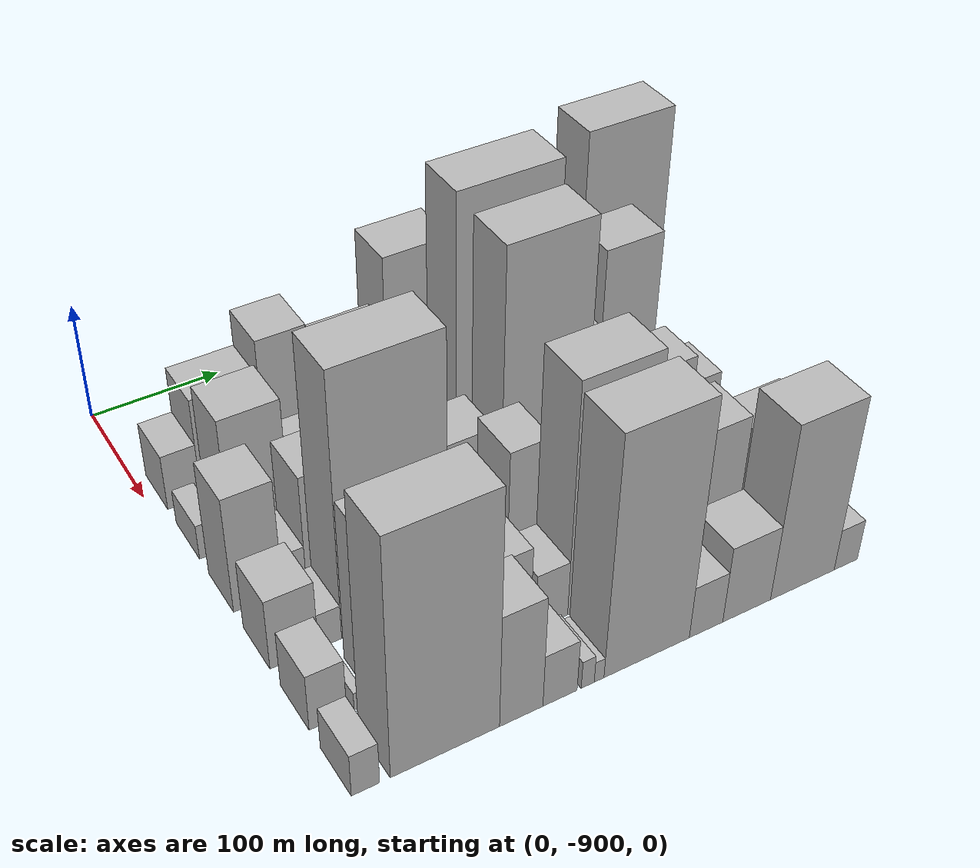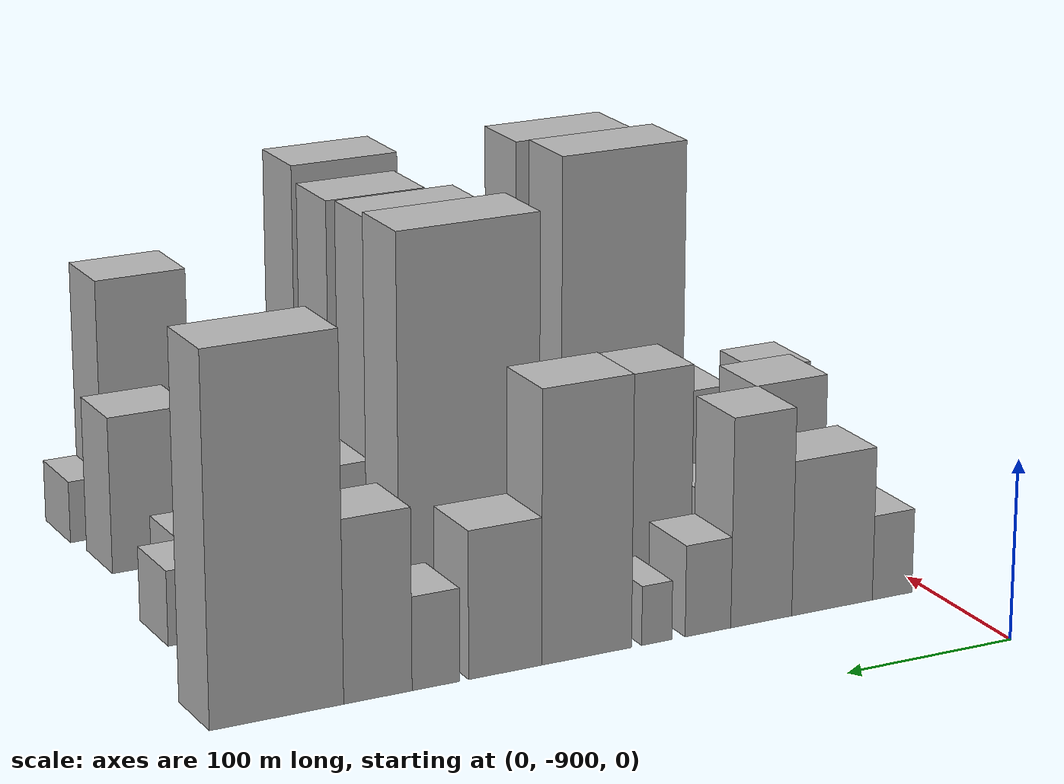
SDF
<sdf version="1.6">
 <world name="default">
  <model name="building_1">
   <static>1</static>
   <pose>100.0000 -877.4478 0 0.000000 0.000000 0.000000</pose>
   <link name="link">
    <pose>0 0 24.00 0 0 0</pose>
    <collision name="collision"><geometry><box><size>40.0000 25.1045 48.0000</size></box></geometry></collision>
    <visual name="visual">
     <cast_shadows>0</cast_shadows>
     <geometry><box><size>40.0000 25.1045 48.0000</size></box></geometry>
     <material>
      <script>
       <uri>model://HANNAS_wall/materials/scripts</uri>
       <uri>model://HANNAS_wall/materials/textures</uri>
       <name>vrc/HANNAS_wall</name>
      </script>
     </material>
    </visual>
   </link>
  </model>
  <model name="building_2">
   <static>1</static>
   <pose>100.0000 -839.7803 0 0.000000 0.000000 0.000000</pose>
   <link name="link">
    <pose>0 0 43.50 0 0 0</pose>
    <collision name="collision"><geometry><box><size>40.0000 50.2305 87.0000</size></box></geometry></collision>
    <visual name="visual">
     <cast_shadows>0</cast_shadows>
     <geometry><box><size>40.0000 50.2305 87.0000</size></box></geometry>
     <material>
      <script>
       <uri>model://HANNAS_wall/materials/scripts</uri>
       <uri>model://HANNAS_wall/materials/textures</uri>
       <name>vrc/HANNAS_wall</name>
      </script>
     </material>
    </visual>
   </link>
  </model>
  <model name="building_3">
   <static>1</static>
   <pose>100.0000 -796.0003 0 0.000000 0.000000 0.000000</pose>
   <link name="link">
    <pose>0 0 58.50 0 0 0</pose>
    <collision name="collision"><geometry><box><size>40.0000 37.3295 117.0000</size></box></geometry></collision>
    <visual name="visual">
     <cast_shadows>0</cast_shadows>
     <geometry><box><size>40.0000 37.3295 117.0000</size></box></geometry>
     <material>
      <script>
       <uri>model://HANNAS_wall/materials/scripts</uri>
       <uri>model://HANNAS_wall/materials/textures</uri>
       <name>vrc/HANNAS_wall</name>
      </script>
     </material>
    </visual>
   </link>
  </model>
  <model name="building_4">
   <static>1</static>
   <pose>100.0000 -763.5788 0 0.000000 0.000000 0.000000</pose>
   <link name="link">
    <pose>0 0 25.50 0 0 0</pose>
    <collision name="collision"><geometry><box><size>40.0000 27.5136 51.0000</size></box></geometry></collision>
    <visual name="visual">
     <cast_shadows>0</cast_shadows>
     <geometry><box><size>40.0000 27.5136 51.0000</size></box></geometry>
     <material>
      <script>
       <uri>model://HANNAS_wall/materials/scripts</uri>
       <uri>model://HANNAS_wall/materials/textures</uri>
       <name>vrc/HANNAS_wall</name>
      </script>
     </material>
    </visual>
   </link>
  </model>
  <model name="building_5">
   <static>1</static>
   <pose>100.0000 -732.8521 0 0.000000 0.000000 0.000000</pose>
   <link name="link">
    <pose>0 0 16.50 0 0 0</pose>
    <collision name="collision"><geometry><box><size>40.0000 17.9398 33.0000</size></box></geometry></collision>
    <visual name="visual">
     <cast_shadows>0</cast_shadows>
     <geometry><box><size>40.0000 17.9398 33.0000</size></box></geometry>
     <material>
      <script>
       <uri>model://HANNAS_wall/materials/scripts</uri>
       <uri>model://HANNAS_wall/materials/textures</uri>
       <name>vrc/HANNAS_wall</name>
      </script>
     </material>
    </visual>
   </link>
  </model>
  <model name="building_6">
   <static>1</static>
   <pose>100.0000 -691.6194 0 0.000000 0.000000 0.000000</pose>
   <link name="link">
    <pose>0 0 75.00 0 0 0</pose>
    <collision name="collision"><geometry><box><size>40.0000 52.5255 150.0000</size></box></geometry></collision>
    <visual name="visual">
     <cast_shadows>0</cast_shadows>
     <geometry><box><size>40.0000 52.5255 150.0000</size></box></geometry>
     <material>
      <script>
       <uri>model://HANNAS_wall/materials/scripts</uri>
       <uri>model://HANNAS_wall/materials/textures</uri>
       <name>vrc/HANNAS_wall</name>
      </script>
     </material>
    </visual>
   </link>
  </model>
  <model name="building_7">
   <static>1</static>
   <pose>100.0000 -644.4254 0 0.000000 0.000000 0.000000</pose>
   <link name="link">
    <pose>0 0 40.50 0 0 0</pose>
    <collision name="collision"><geometry><box><size>40.0000 41.8624 81.0000</size></box></geometry></collision>
    <visual name="visual">
     <cast_shadows>0</cast_shadows>
     <geometry><box><size>40.0000 41.8624 81.0000</size></box></geometry>
     <material>
      <script>
       <uri>model://HANNAS_wall/materials/scripts</uri>
       <uri>model://HANNAS_wall/materials/textures</uri>
       <name>vrc/HANNAS_wall</name>
      </script>
     </material>
    </visual>
   </link>
  </model>
  <model name="building_8">
   <static>1</static>
   <pose>100.0000 -605.0732 0 0.000000 0.000000 0.000000</pose>
   <link name="link">
    <pose>0 0 25.50 0 0 0</pose>
    <collision name="collision"><geometry><box><size>40.0000 26.8420 51.0000</size></box></geometry></collision>
    <visual name="visual">
     <cast_shadows>0</cast_shadows>
     <geometry><box><size>40.0000 26.8420 51.0000</size></box></geometry>
     <material>
      <script>
       <uri>model://HANNAS_wall/materials/scripts</uri>
       <uri>model://HANNAS_wall/materials/textures</uri>
       <name>vrc/HANNAS_wall</name>
      </script>
     </material>
    </visual>
   </link>
  </model>
  <model name="building_9">
   <static>1</static>
   <pose>100.0000 -572.6820 0 0.000000 0.000000 0.000000</pose>
   <link name="link">
    <pose>0 0 49.50 0 0 0</pose>
    <collision name="collision"><geometry><box><size>40.0000 37.9405 99.0000</size></box></geometry></collision>
    <visual name="visual">
     <cast_shadows>0</cast_shadows>
     <geometry><box><size>40.0000 37.9405 99.0000</size></box></geometry>
     <material>
      <script>
       <uri>model://HANNAS_wall/materials/scripts</uri>
       <uri>model://HANNAS_wall/materials/textures</uri>
       <name>vrc/HANNAS_wall</name>
      </script>
     </material>
    </visual>
   </link>
  </model>
  <model name="building_10">
   <static>1</static>
   <pose>100.0000 -517.3630 0 0.000000 0.000000 0.000000</pose>
   <link name="link">
    <pose>0 0 99.00 0 0 0</pose>
    <collision name="collision"><geometry><box><size>40.0000 72.6974 198.0000</size></box></geometry></collision>
    <visual name="visual">
     <cast_shadows>0</cast_shadows>
     <geometry><box><size>40.0000 72.6974 198.0000</size></box></geometry>
     <material>
      <script>
       <uri>model://HANNAS_wall/materials/scripts</uri>
       <uri>model://HANNAS_wall/materials/textures</uri>
       <name>vrc/HANNAS_wall</name>
      </script>
     </material>
    </visual>
   </link>
  </model>
  <model name="building_46">
   <static>1</static>
   <pose>155.0000 -882.0637 0 0.000000 0.000000 0.000000</pose>
   <link name="link">
    <pose>0 0 15.00 0 0 0</pose>
    <collision name="collision"><geometry><box><size>40.0000 15.8725 30.0000</size></box></geometry></collision>
    <visual name="visual">
     <cast_shadows>0</cast_shadows>
     <geometry><box><size>40.0000 15.8725 30.0000</size></box></geometry>
     <material>
      <script>
       <uri>model://HANNAS_wall/materials/scripts</uri>
       <uri>model://HANNAS_wall/materials/textures</uri>
       <name>vrc/HANNAS_wall</name>
      </script>
     </material>
    </visual>
   </link>
  </model>
  <model name="building_47">
   <static>1</static>
   <pose>155.0000 -844.9315 0 0.000000 0.000000 0.000000</pose>
   <link name="link">
    <pose>0 0 55.50 0 0 0</pose>
    <collision name="collision"><geometry><box><size>40.0000 44.3920 111.0000</size></box></geometry></collision>
    <visual name="visual">
     <cast_shadows>0</cast_shadows>
     <geometry><box><size>40.0000 44.3920 111.0000</size></box></geometry>
     <material>
      <script>
       <uri>model://HANNAS_wall/materials/scripts</uri>
       <uri>model://HANNAS_wall/materials/textures</uri>
       <name>vrc/HANNAS_wall</name>
      </script>
     </material>
    </visual>
   </link>
  </model>
  <model name="building_48">
   <static>1</static>
   <pose>155.0000 -803.8946 0 0.000000 0.000000 0.000000</pose>
   <link name="link">
    <pose>0 0 28.50 0 0 0</pose>
    <collision name="collision"><geometry><box><size>40.0000 29.6819 57.0000</size></box></geometry></collision>
    <visual name="visual">
     <cast_shadows>0</cast_shadows>
     <geometry><box><size>40.0000 29.6819 57.0000</size></box></geometry>
     <material>
      <script>
       <uri>model://HANNAS_wall/materials/scripts</uri>
       <uri>model://HANNAS_wall/materials/textures</uri>
       <name>vrc/HANNAS_wall</name>
      </script>
     </material>
    </visual>
   </link>
  </model>
  <model name="building_49">
   <static>1</static>
   <pose>155.0000 -760.6865 0 0.000000 0.000000 0.000000</pose>
   <link name="link">
    <pose>0 0 64.50 0 0 0</pose>
    <collision name="collision"><geometry><box><size>40.0000 46.7343 129.0000</size></box></geometry></collision>
    <visual name="visual">
     <cast_shadows>0</cast_shadows>
     <geometry><box><size>40.0000 46.7343 129.0000</size></box></geometry>
     <material>
      <script>
       <uri>model://HANNAS_wall/materials/scripts</uri>
       <uri>model://HANNAS_wall/materials/textures</uri>
       <name>vrc/HANNAS_wall</name>
      </script>
     </material>
    </visual>
   </link>
  </model>
  <model name="building_50">
   <static>1</static>
   <pose>155.0000 -733.6499 0 0.000000 0.000000 0.000000</pose>
   <link name="link">
    <pose>0 0 9.00 0 0 0</pose>
    <collision name="collision"><geometry><box><size>40.0000 7.3388 18.0000</size></box></geometry></collision>
    <visual name="visual">
     <cast_shadows>0</cast_shadows>
     <geometry><box><size>40.0000 7.3388 18.0000</size></box></geometry>
     <material>
      <script>
       <uri>model://HANNAS_wall/materials/scripts</uri>
       <uri>model://HANNAS_wall/materials/textures</uri>
       <name>vrc/HANNAS_wall</name>
      </script>
     </material>
    </visual>
   </link>
  </model>
  <model name="building_51">
   <static>1</static>
   <pose>155.0000 -715.0751 0 0.000000 0.000000 0.000000</pose>
   <link name="link">
    <pose>0 0 25.50 0 0 0</pose>
    <collision name="collision"><geometry><box><size>40.0000 29.8109 51.0000</size></box></geometry></collision>
    <visual name="visual">
     <cast_shadows>0</cast_shadows>
     <geometry><box><size>40.0000 29.8109 51.0000</size></box></geometry>
     <material>
      <script>
       <uri>model://HANNAS_wall/materials/scripts</uri>
       <uri>model://HANNAS_wall/materials/textures</uri>
       <name>vrc/HANNAS_wall</name>
      </script>
     </material>
    </visual>
   </link>
  </model>
  <model name="building_52">
   <static>1</static>
   <pose>155.0000 -651.3712 0 0.000000 0.000000 0.000000</pose>
   <link name="link">
    <pose>0 0 112.50 0 0 0</pose>
    <collision name="collision"><geometry><box><size>40.0000 81.5970 225.0000</size></box></geometry></collision>
    <visual name="visual">
     <cast_shadows>0</cast_shadows>
     <geometry><box><size>40.0000 81.5970 225.0000</size></box></geometry>
     <material>
      <script>
       <uri>model://HANNAS_wall/materials/scripts</uri>
       <uri>model://HANNAS_wall/materials/textures</uri>
       <name>vrc/HANNAS_wall</name>
      </script>
     </material>
    </visual>
   </link>
  </model>
  <model name="building_53">
   <static>1</static>
   <pose>155.0000 -591.2501 0 0.000000 0.000000 0.000000</pose>
   <link name="link">
    <pose>0 0 36.00 0 0 0</pose>
    <collision name="collision"><geometry><box><size>40.0000 38.6452 72.0000</size></box></geometry></collision>
    <visual name="visual">
     <cast_shadows>0</cast_shadows>
     <geometry><box><size>40.0000 38.6452 72.0000</size></box></geometry>
     <material>
      <script>
       <uri>model://HANNAS_wall/materials/scripts</uri>
       <uri>model://HANNAS_wall/materials/textures</uri>
       <name>vrc/HANNAS_wall</name>
      </script>
     </material>
    </visual>
   </link>
  </model>
  <model name="building_54">
   <static>1</static>
   <pose>155.0000 -547.9047 0 0.000000 0.000000 0.000000</pose>
   <link name="link">
    <pose>0 0 69.00 0 0 0</pose>
    <collision name="collision"><geometry><box><size>40.0000 48.0456 138.0000</size></box></geometry></collision>
    <visual name="visual">
     <cast_shadows>0</cast_shadows>
     <geometry><box><size>40.0000 48.0456 138.0000</size></box></geometry>
     <material>
      <script>
       <uri>model://HANNAS_wall/materials/scripts</uri>
       <uri>model://HANNAS_wall/materials/textures</uri>
       <name>vrc/HANNAS_wall</name>
      </script>
     </material>
    </visual>
   </link>
  </model>
  <model name="building_99">
   <static>1</static>
   <pose>210.0000 -872.4733 0 0.000000 0.000000 0.000000</pose>
   <link name="link">
    <pose>0 0 49.50 0 0 0</pose>
    <collision name="collision"><geometry><box><size>40.0000 35.0534 99.0000</size></box></geometry></collision>
    <visual name="visual">
     <cast_shadows>0</cast_shadows>
     <geometry><box><size>40.0000 35.0534 99.0000</size></box></geometry>
     <material>
      <script>
       <uri>model://HANNAS_wall/materials/scripts</uri>
       <uri>model://HANNAS_wall/materials/textures</uri>
       <name>vrc/HANNAS_wall</name>
      </script>
     </material>
    </visual>
   </link>
  </model>
  <model name="building_100">
   <static>1</static>
   <pose>210.0000 -846.4295 0 0.000000 0.000000 0.000000</pose>
   <link name="link">
    <pose>0 0 16.50 0 0 0</pose>
    <collision name="collision"><geometry><box><size>40.0000 17.0342 33.0000</size></box></geometry></collision>
    <visual name="visual">
     <cast_shadows>0</cast_shadows>
     <geometry><box><size>40.0000 17.0342 33.0000</size></box></geometry>
     <material>
      <script>
       <uri>model://HANNAS_wall/materials/scripts</uri>
       <uri>model://HANNAS_wall/materials/textures</uri>
       <name>vrc/HANNAS_wall</name>
      </script>
     </material>
    </visual>
   </link>
  </model>
  <model name="building_101">
   <static>1</static>
   <pose>210.0000 -823.4933 0 0.000000 0.000000 0.000000</pose>
   <link name="link">
    <pose>0 0 46.50 0 0 0</pose>
    <collision name="collision"><geometry><box><size>40.0000 28.8382 93.0000</size></box></geometry></collision>
    <visual name="visual">
     <cast_shadows>0</cast_shadows>
     <geometry><box><size>40.0000 28.8382 93.0000</size></box></geometry>
     <material>
      <script>
       <uri>model://HANNAS_wall/materials/scripts</uri>
       <uri>model://HANNAS_wall/materials/textures</uri>
       <name>vrc/HANNAS_wall</name>
      </script>
     </material>
    </visual>
   </link>
  </model>
  <model name="building_102">
   <static>1</static>
   <pose>210.0000 -786.2546 0 0.000000 0.000000 0.000000</pose>
   <link name="link">
    <pose>0 0 34.50 0 0 0</pose>
    <collision name="collision"><geometry><box><size>40.0000 37.6391 69.0000</size></box></geometry></collision>
    <visual name="visual">
     <cast_shadows>0</cast_shadows>
     <geometry><box><size>40.0000 37.6391 69.0000</size></box></geometry>
     <material>
      <script>
       <uri>model://HANNAS_wall/materials/scripts</uri>
       <uri>model://HANNAS_wall/materials/textures</uri>
       <name>vrc/HANNAS_wall</name>
      </script>
     </material>
    </visual>
   </link>
  </model>
  <model name="building_103">
   <static>1</static>
   <pose>210.0000 -751.5960 0 0.000000 0.000000 0.000000</pose>
   <link name="link">
    <pose>0 0 28.50 0 0 0</pose>
    <collision name="collision"><geometry><box><size>40.0000 31.6781 57.0000</size></box></geometry></collision>
    <visual name="visual">
     <cast_shadows>0</cast_shadows>
     <geometry><box><size>40.0000 31.6781 57.0000</size></box></geometry>
     <material>
      <script>
       <uri>model://HANNAS_wall/materials/scripts</uri>
       <uri>model://HANNAS_wall/materials/textures</uri>
       <name>vrc/HANNAS_wall</name>
      </script>
     </material>
    </visual>
   </link>
  </model>
  <model name="building_104">
   <static>1</static>
   <pose>210.0000 -715.1206 0 0.000000 0.000000 0.000000</pose>
   <link name="link">
    <pose>0 0 36.00 0 0 0</pose>
    <collision name="collision"><geometry><box><size>40.0000 41.2726 72.0000</size></box></geometry></collision>
    <visual name="visual">
     <cast_shadows>0</cast_shadows>
     <geometry><box><size>40.0000 41.2726 72.0000</size></box></geometry>
     <material>
      <script>
       <uri>model://HANNAS_wall/materials/scripts</uri>
       <uri>model://HANNAS_wall/materials/textures</uri>
       <name>vrc/HANNAS_wall</name>
      </script>
     </material>
    </visual>
   </link>
  </model>
  <model name="building_105">
   <static>1</static>
   <pose>210.0000 -654.0828 0 0.000000 0.000000 0.000000</pose>
   <link name="link">
    <pose>0 0 108.00 0 0 0</pose>
    <collision name="collision"><geometry><box><size>40.0000 68.8032 216.0000</size></box></geometry></collision>
    <visual name="visual">
     <cast_shadows>0</cast_shadows>
     <geometry><box><size>40.0000 68.8032 216.0000</size></box></geometry>
     <material>
      <script>
       <uri>model://HANNAS_wall/materials/scripts</uri>
       <uri>model://HANNAS_wall/materials/textures</uri>
       <name>vrc/HANNAS_wall</name>
      </script>
     </material>
    </visual>
   </link>
  </model>
  <model name="building_106">
   <static>1</static>
   <pose>210.0000 -597.1380 0 0.000000 0.000000 0.000000</pose>
   <link name="link">
    <pose>0 0 42.00 0 0 0</pose>
    <collision name="collision"><geometry><box><size>40.0000 45.0863 84.0000</size></box></geometry></collision>
    <visual name="visual">
     <cast_shadows>0</cast_shadows>
     <geometry><box><size>40.0000 45.0863 84.0000</size></box></geometry>
     <material>
      <script>
       <uri>model://HANNAS_wall/materials/scripts</uri>
       <uri>model://HANNAS_wall/materials/textures</uri>
       <name>vrc/HANNAS_wall</name>
      </script>
     </material>
    </visual>
   </link>
  </model>
  <model name="building_107">
   <static>1</static>
   <pose>210.0000 -546.4792 0 0.000000 0.000000 0.000000</pose>
   <link name="link">
    <pose>0 0 33.00 0 0 0</pose>
    <collision name="collision"><geometry><box><size>40.0000 38.2313 66.0000</size></box></geometry></collision>
    <visual name="visual">
     <cast_shadows>0</cast_shadows>
     <geometry><box><size>40.0000 38.2313 66.0000</size></box></geometry>
     <material>
      <script>
       <uri>model://HANNAS_wall/materials/scripts</uri>
       <uri>model://HANNAS_wall/materials/textures</uri>
       <name>vrc/HANNAS_wall</name>
      </script>
     </material>
    </visual>
   </link>
  </model>
  <model name="building_108">
   <static>1</static>
   <pose>210.0000 -515.3546 0 0.000000 0.000000 0.000000</pose>
   <link name="link">
    <pose>0 0 21.00 0 0 0</pose>
    <collision name="collision"><geometry><box><size>40.0000 24.0178 42.0000</size></box></geometry></collision>
    <visual name="visual">
     <cast_shadows>0</cast_shadows>
     <geometry><box><size>40.0000 24.0178 42.0000</size></box></geometry>
     <material>
      <script>
       <uri>model://HANNAS_wall/materials/scripts</uri>
       <uri>model://HANNAS_wall/materials/textures</uri>
       <name>vrc/HANNAS_wall</name>
      </script>
     </material>
    </visual>
   </link>
  </model>
  <model name="building_156">
   <static>1</static>
   <pose>265.0000 -873.2641 0 0.000000 0.000000 0.000000</pose>
   <link name="link">
    <pose>0 0 30.00 0 0 0</pose>
    <collision name="collision"><geometry><box><size>40.0000 33.4718 60.0000</size></box></geometry></collision>
    <visual name="visual">
     <cast_shadows>0</cast_shadows>
     <geometry><box><size>40.0000 33.4718 60.0000</size></box></geometry>
     <material>
      <script>
       <uri>model://HANNAS_wall/materials/scripts</uri>
       <uri>model://HANNAS_wall/materials/textures</uri>
       <name>vrc/HANNAS_wall</name>
      </script>
     </material>
    </visual>
   </link>
  </model>
  <model name="building_157">
   <static>1</static>
   <pose>265.0000 -848.2698 0 0.000000 0.000000 0.000000</pose>
   <link name="link">
    <pose>0 0 15.00 0 0 0</pose>
    <collision name="collision"><geometry><box><size>40.0000 16.5167 30.0000</size></box></geometry></collision>
    <visual name="visual">
     <cast_shadows>0</cast_shadows>
     <geometry><box><size>40.0000 16.5167 30.0000</size></box></geometry>
     <material>
      <script>
       <uri>model://HANNAS_wall/materials/scripts</uri>
       <uri>model://HANNAS_wall/materials/textures</uri>
       <name>vrc/HANNAS_wall</name>
      </script>
     </material>
    </visual>
   </link>
  </model>
  <model name="building_158">
   <static>1</static>
   <pose>265.0000 -801.2551 0 0.000000 0.000000 0.000000</pose>
   <link name="link">
    <pose>0 0 109.50 0 0 0</pose>
    <collision name="collision"><geometry><box><size>40.0000 77.5128 219.0000</size></box></geometry></collision>
    <visual name="visual">
     <cast_shadows>0</cast_shadows>
     <geometry><box><size>40.0000 77.5128 219.0000</size></box></geometry>
     <material>
      <script>
       <uri>model://HANNAS_wall/materials/scripts</uri>
       <uri>model://HANNAS_wall/materials/textures</uri>
       <name>vrc/HANNAS_wall</name>
      </script>
     </material>
    </visual>
   </link>
  </model>
  <model name="building_159">
   <static>1</static>
   <pose>265.0000 -738.2739 0 0.000000 0.000000 0.000000</pose>
   <link name="link">
    <pose>0 0 31.50 0 0 0</pose>
    <collision name="collision"><geometry><box><size>40.0000 32.4497 63.0000</size></box></geometry></collision>
    <visual name="visual">
     <cast_shadows>0</cast_shadows>
     <geometry><box><size>40.0000 32.4497 63.0000</size></box></geometry>
     <material>
      <script>
       <uri>model://HANNAS_wall/materials/scripts</uri>
       <uri>model://HANNAS_wall/materials/textures</uri>
       <name>vrc/HANNAS_wall</name>
      </script>
     </material>
    </visual>
   </link>
  </model>
  <model name="building_160">
   <static>1</static>
   <pose>265.0000 -701.5733 0 0.000000 0.000000 0.000000</pose>
   <link name="link">
    <pose>0 0 51.00 0 0 0</pose>
    <collision name="collision"><geometry><box><size>40.0000 30.9513 102.0000</size></box></geometry></collision>
    <visual name="visual">
     <cast_shadows>0</cast_shadows>
     <geometry><box><size>40.0000 30.9513 102.0000</size></box></geometry>
     <material>
      <script>
       <uri>model://HANNAS_wall/materials/scripts</uri>
       <uri>model://HANNAS_wall/materials/textures</uri>
       <name>vrc/HANNAS_wall</name>
      </script>
     </material>
    </visual>
   </link>
  </model>
  <model name="building_161">
   <static>1</static>
   <pose>265.0000 -666.0573 0 0.000000 0.000000 0.000000</pose>
   <link name="link">
    <pose>0 0 36.00 0 0 0</pose>
    <collision name="collision"><geometry><box><size>40.0000 40.0808 72.0000</size></box></geometry></collision>
    <visual name="visual">
     <cast_shadows>0</cast_shadows>
     <geometry><box><size>40.0000 40.0808 72.0000</size></box></geometry>
     <material>
      <script>
       <uri>model://HANNAS_wall/materials/scripts</uri>
       <uri>model://HANNAS_wall/materials/textures</uri>
       <name>vrc/HANNAS_wall</name>
      </script>
     </material>
    </visual>
   </link>
  </model>
  <model name="building_162">
   <static>1</static>
   <pose>265.0000 -621.2730 0 0.000000 0.000000 0.000000</pose>
   <link name="link">
    <pose>0 0 31.50 0 0 0</pose>
    <collision name="collision"><geometry><box><size>40.0000 35.4878 63.0000</size></box></geometry></collision>
    <visual name="visual">
     <cast_shadows>0</cast_shadows>
     <geometry><box><size>40.0000 35.4878 63.0000</size></box></geometry>
     <material>
      <script>
       <uri>model://HANNAS_wall/materials/scripts</uri>
       <uri>model://HANNAS_wall/materials/textures</uri>
       <name>vrc/HANNAS_wall</name>
      </script>
     </material>
    </visual>
   </link>
  </model>
  <model name="building_163">
   <static>1</static>
   <pose>265.0000 -584.2302 0 0.000000 0.000000 0.000000</pose>
   <link name="link">
    <pose>0 0 33.00 0 0 0</pose>
    <collision name="collision"><geometry><box><size>40.0000 38.5979 66.0000</size></box></geometry></collision>
    <visual name="visual">
     <cast_shadows>0</cast_shadows>
     <geometry><box><size>40.0000 38.5979 66.0000</size></box></geometry>
     <material>
      <script>
       <uri>model://HANNAS_wall/materials/scripts</uri>
       <uri>model://HANNAS_wall/materials/textures</uri>
       <name>vrc/HANNAS_wall</name>
      </script>
     </material>
    </visual>
   </link>
  </model>
  <model name="building_164">
   <static>1</static>
   <pose>265.0000 -559.2539 0 0.000000 0.000000 0.000000</pose>
   <link name="link">
    <pose>0 0 13.50 0 0 0</pose>
    <collision name="collision"><geometry><box><size>40.0000 11.3548 27.0000</size></box></geometry></collision>
    <visual name="visual">
     <cast_shadows>0</cast_shadows>
     <geometry><box><size>40.0000 11.3548 27.0000</size></box></geometry>
     <material>
      <script>
       <uri>model://HANNAS_wall/materials/scripts</uri>
       <uri>model://HANNAS_wall/materials/textures</uri>
       <name>vrc/HANNAS_wall</name>
      </script>
     </material>
    </visual>
   </link>
  </model>
  <model name="building_165">
   <static>1</static>
   <pose>265.0000 -541.1656 0 0.000000 0.000000 0.000000</pose>
   <link name="link">
    <pose>0 0 18.00 0 0 0</pose>
    <collision name="collision"><geometry><box><size>40.0000 18.8219 36.0000</size></box></geometry></collision>
    <visual name="visual">
     <cast_shadows>0</cast_shadows>
     <geometry><box><size>40.0000 18.8219 36.0000</size></box></geometry>
     <material>
      <script>
       <uri>model://HANNAS_wall/materials/scripts</uri>
       <uri>model://HANNAS_wall/materials/textures</uri>
       <name>vrc/HANNAS_wall</name>
      </script>
     </material>
    </visual>
   </link>
  </model>
  <model name="building_205">
   <static>1</static>
   <pose>320.0000 -877.3278 0 0.000000 0.000000 0.000000</pose>
   <link name="link">
    <pose>0 0 24.00 0 0 0</pose>
    <collision name="collision"><geometry><box><size>40.0000 25.3445 48.0000</size></box></geometry></collision>
    <visual name="visual">
     <cast_shadows>0</cast_shadows>
     <geometry><box><size>40.0000 25.3445 48.0000</size></box></geometry>
     <material>
      <script>
       <uri>model://HANNAS_wall/materials/scripts</uri>
       <uri>model://HANNAS_wall/materials/textures</uri>
       <name>vrc/HANNAS_wall</name>
      </script>
     </material>
    </visual>
   </link>
  </model>
  <model name="building_206">
   <static>1</static>
   <pose>320.0000 -856.3113 0 0.000000 0.000000 0.000000</pose>
   <link name="link">
    <pose>0 0 7.50 0 0 0</pose>
    <collision name="collision"><geometry><box><size>40.0000 6.6884 15.0000</size></box></geometry></collision>
    <visual name="visual">
     <cast_shadows>0</cast_shadows>
     <geometry><box><size>40.0000 6.6884 15.0000</size></box></geometry>
     <material>
      <script>
       <uri>model://HANNAS_wall/materials/scripts</uri>
       <uri>model://HANNAS_wall/materials/textures</uri>
       <name>vrc/HANNAS_wall</name>
      </script>
     </material>
    </visual>
   </link>
  </model>
  <model name="building_207">
   <static>1</static>
   <pose>320.0000 -820.2893 0 0.000000 0.000000 0.000000</pose>
   <link name="link">
    <pose>0 0 67.50 0 0 0</pose>
    <collision name="collision"><geometry><box><size>40.0000 51.3556 135.0000</size></box></geometry></collision>
    <visual name="visual">
     <cast_shadows>0</cast_shadows>
     <geometry><box><size>40.0000 51.3556 135.0000</size></box></geometry>
     <material>
      <script>
       <uri>model://HANNAS_wall/materials/scripts</uri>
       <uri>model://HANNAS_wall/materials/textures</uri>
       <name>vrc/HANNAS_wall</name>
      </script>
     </material>
    </visual>
   </link>
  </model>
  <model name="building_208">
   <static>1</static>
   <pose>320.0000 -783.7414 0 0.000000 0.000000 0.000000</pose>
   <link name="link">
    <pose>0 0 21.00 0 0 0</pose>
    <collision name="collision"><geometry><box><size>40.0000 21.7402 42.0000</size></box></geometry></collision>
    <visual name="visual">
     <cast_shadows>0</cast_shadows>
     <geometry><box><size>40.0000 21.7402 42.0000</size></box></geometry>
     <material>
      <script>
       <uri>model://HANNAS_wall/materials/scripts</uri>
       <uri>model://HANNAS_wall/materials/textures</uri>
       <name>vrc/HANNAS_wall</name>
      </script>
     </material>
    </visual>
   </link>
  </model>
  <model name="building_209">
   <static>1</static>
   <pose>320.0000 -753.2340 0 0.000000 0.000000 0.000000</pose>
   <link name="link">
    <pose>0 0 37.50 0 0 0</pose>
    <collision name="collision"><geometry><box><size>40.0000 39.2745 75.0000</size></box></geometry></collision>
    <visual name="visual">
     <cast_shadows>0</cast_shadows>
     <geometry><box><size>40.0000 39.2745 75.0000</size></box></geometry>
     <material>
      <script>
       <uri>model://HANNAS_wall/materials/scripts</uri>
       <uri>model://HANNAS_wall/materials/textures</uri>
       <name>vrc/HANNAS_wall</name>
      </script>
     </material>
    </visual>
   </link>
  </model>
  <model name="building_210">
   <static>1</static>
   <pose>320.0000 -717.4269 0 0.000000 0.000000 0.000000</pose>
   <link name="link">
    <pose>0 0 24.00 0 0 0</pose>
    <collision name="collision"><geometry><box><size>40.0000 24.3397 48.0000</size></box></geometry></collision>
    <visual name="visual">
     <cast_shadows>0</cast_shadows>
     <geometry><box><size>40.0000 24.3397 48.0000</size></box></geometry>
     <material>
      <script>
       <uri>model://HANNAS_wall/materials/scripts</uri>
       <uri>model://HANNAS_wall/materials/textures</uri>
       <name>vrc/HANNAS_wall</name>
      </script>
     </material>
    </visual>
   </link>
  </model>
  <model name="building_211">
   <static>1</static>
   <pose>320.0000 -675.4132 0 0.000000 0.000000 0.000000</pose>
   <link name="link">
    <pose>0 0 97.50 0 0 0</pose>
    <collision name="collision"><geometry><box><size>40.0000 59.6878 195.0000</size></box></geometry></collision>
    <visual name="visual">
     <cast_shadows>0</cast_shadows>
     <geometry><box><size>40.0000 59.6878 195.0000</size></box></geometry>
     <material>
      <script>
       <uri>model://HANNAS_wall/materials/scripts</uri>
       <uri>model://HANNAS_wall/materials/textures</uri>
       <name>vrc/HANNAS_wall</name>
      </script>
     </material>
    </visual>
   </link>
  </model>
  <model name="building_212">
   <static>1</static>
   <pose>320.0000 -625.5063 0 0.000000 0.000000 0.000000</pose>
   <link name="link">
    <pose>0 0 19.50 0 0 0</pose>
    <collision name="collision"><geometry><box><size>40.0000 22.1261 39.0000</size></box></geometry></collision>
    <visual name="visual">
     <cast_shadows>0</cast_shadows>
     <geometry><box><size>40.0000 22.1261 39.0000</size></box></geometry>
     <material>
      <script>
       <uri>model://HANNAS_wall/materials/scripts</uri>
       <uri>model://HANNAS_wall/materials/textures</uri>
       <name>vrc/HANNAS_wall</name>
      </script>
     </material>
    </visual>
   </link>
  </model>
  <model name="building_213">
   <static>1</static>
   <pose>320.0000 -592.7810 0 0.000000 0.000000 0.000000</pose>
   <link name="link">
    <pose>0 0 55.50 0 0 0</pose>
    <collision name="collision"><geometry><box><size>40.0000 43.3244 111.0000</size></box></geometry></collision>
    <visual name="visual">
     <cast_shadows>0</cast_shadows>
     <geometry><box><size>40.0000 43.3244 111.0000</size></box></geometry>
     <material>
      <script>
       <uri>model://HANNAS_wall/materials/scripts</uri>
       <uri>model://HANNAS_wall/materials/textures</uri>
       <name>vrc/HANNAS_wall</name>
      </script>
     </material>
    </visual>
   </link>
  </model>
  <model name="building_214">
   <static>1</static>
   <pose>320.0000 -566.6392 0 0.000000 0.000000 0.000000</pose>
   <link name="link">
    <pose>0 0 10.50 0 0 0</pose>
    <collision name="collision"><geometry><box><size>40.0000 8.9593 21.0000</size></box></geometry></collision>
    <visual name="visual">
     <cast_shadows>0</cast_shadows>
     <geometry><box><size>40.0000 8.9593 21.0000</size></box></geometry>
     <material>
      <script>
       <uri>model://HANNAS_wall/materials/scripts</uri>
       <uri>model://HANNAS_wall/materials/textures</uri>
       <name>vrc/HANNAS_wall</name>
      </script>
     </material>
    </visual>
   </link>
  </model>
  <model name="building_215">
   <static>1</static>
   <pose>320.0000 -538.4878 0 0.000000 0.000000 0.000000</pose>
   <link name="link">
    <pose>0 0 45.00 0 0 0</pose>
    <collision name="collision"><geometry><box><size>40.0000 47.3434 90.0000</size></box></geometry></collision>
    <visual name="visual">
     <cast_shadows>0</cast_shadows>
     <geometry><box><size>40.0000 47.3434 90.0000</size></box></geometry>
     <material>
      <script>
       <uri>model://HANNAS_wall/materials/scripts</uri>
       <uri>model://HANNAS_wall/materials/textures</uri>
       <name>vrc/HANNAS_wall</name>
      </script>
     </material>
    </visual>
   </link>
  </model>
  <model name="building_257">
   <static>1</static>
   <pose>375.0000 -880.7270 0 0.000000 0.000000 0.000000</pose>
   <link name="link">
    <pose>0 0 18.00 0 0 0</pose>
    <collision name="collision"><geometry><box><size>40.0000 18.5460 36.0000</size></box></geometry></collision>
    <visual name="visual">
     <cast_shadows>0</cast_shadows>
     <geometry><box><size>40.0000 18.5460 36.0000</size></box></geometry>
     <material>
      <script>
       <uri>model://HANNAS_wall/materials/scripts</uri>
       <uri>model://HANNAS_wall/materials/textures</uri>
       <name>vrc/HANNAS_wall</name>
      </script>
     </material>
    </visual>
   </link>
  </model>
  <model name="building_258">
   <static>1</static>
   <pose>375.0000 -827.1611 0 0.000000 0.000000 0.000000</pose>
   <link name="link">
    <pose>0 0 99.00 0 0 0</pose>
    <collision name="collision"><geometry><box><size>40.0000 74.5856 198.0000</size></box></geometry></collision>
    <visual name="visual">
     <cast_shadows>0</cast_shadows>
     <geometry><box><size>40.0000 74.5856 198.0000</size></box></geometry>
     <material>
      <script>
       <uri>model://HANNAS_wall/materials/scripts</uri>
       <uri>model://HANNAS_wall/materials/textures</uri>
       <name>vrc/HANNAS_wall</name>
      </script>
     </material>
    </visual>
   </link>
  </model>
  <model name="building_259">
   <static>1</static>
   <pose>375.0000 -774.4397 0 0.000000 0.000000 0.000000</pose>
   <link name="link">
    <pose>0 0 48.00 0 0 0</pose>
    <collision name="collision"><geometry><box><size>40.0000 30.8572 96.0000</size></box></geometry></collision>
    <visual name="visual">
     <cast_shadows>0</cast_shadows>
     <geometry><box><size>40.0000 30.8572 96.0000</size></box></geometry>
     <material>
      <script>
       <uri>model://HANNAS_wall/materials/scripts</uri>
       <uri>model://HANNAS_wall/materials/textures</uri>
       <name>vrc/HANNAS_wall</name>
      </script>
     </material>
    </visual>
   </link>
  </model>
  <model name="building_260">
   <static>1</static>
   <pose>375.0000 -746.5765 0 0.000000 0.000000 0.000000</pose>
   <link name="link">
    <pose>0 0 22.50 0 0 0</pose>
    <collision name="collision"><geometry><box><size>40.0000 24.8691 45.0000</size></box></geometry></collision>
    <visual name="visual">
     <cast_shadows>0</cast_shadows>
     <geometry><box><size>40.0000 24.8691 45.0000</size></box></geometry>
     <material>
      <script>
       <uri>model://HANNAS_wall/materials/scripts</uri>
       <uri>model://HANNAS_wall/materials/textures</uri>
       <name>vrc/HANNAS_wall</name>
      </script>
     </material>
    </visual>
   </link>
  </model>
  <model name="building_261">
   <static>1</static>
   <pose>375.0000 -726.3397 0 0.000000 0.000000 0.000000</pose>
   <link name="link">
    <pose>0 0 12.00 0 0 0</pose>
    <collision name="collision"><geometry><box><size>40.0000 9.6046 24.0000</size></box></geometry></collision>
    <visual name="visual">
     <cast_shadows>0</cast_shadows>
     <geometry><box><size>40.0000 9.6046 24.0000</size></box></geometry>
     <material>
      <script>
       <uri>model://HANNAS_wall/materials/scripts</uri>
       <uri>model://HANNAS_wall/materials/textures</uri>
       <name>vrc/HANNAS_wall</name>
      </script>
     </material>
    </visual>
   </link>
  </model>
  <model name="building_262">
   <static>1</static>
   <pose>375.0000 -717.9306 0 0.000000 0.000000 0.000000</pose>
   <link name="link">
    <pose>0 0 9.00 0 0 0</pose>
    <collision name="collision"><geometry><box><size>40.0000 7.2136 18.0000</size></box></geometry></collision>
    <visual name="visual">
     <cast_shadows>0</cast_shadows>
     <geometry><box><size>40.0000 7.2136 18.0000</size></box></geometry>
     <material>
      <script>
       <uri>model://HANNAS_wall/materials/scripts</uri>
       <uri>model://HANNAS_wall/materials/textures</uri>
       <name>vrc/HANNAS_wall</name>
      </script>
     </material>
    </visual>
   </link>
  </model>
  <model name="building_263">
   <static>1</static>
   <pose>375.0000 -681.7355 0 0.000000 0.000000 0.000000</pose>
   <link name="link">
    <pose>0 0 100.50 0 0 0</pose>
    <collision name="collision"><geometry><box><size>40.0000 65.1765 201.0000</size></box></geometry></collision>
    <visual name="visual">
     <cast_shadows>0</cast_shadows>
     <geometry><box><size>40.0000 65.1765 201.0000</size></box></geometry>
     <material>
      <script>
       <uri>model://HANNAS_wall/materials/scripts</uri>
       <uri>model://HANNAS_wall/materials/textures</uri>
       <name>vrc/HANNAS_wall</name>
      </script>
     </material>
    </visual>
   </link>
  </model>
  <model name="building_264">
   <static>1</static>
   <pose>375.0000 -635.9432 0 0.000000 0.000000 0.000000</pose>
   <link name="link">
    <pose>0 0 22.50 0 0 0</pose>
    <collision name="collision"><geometry><box><size>40.0000 26.4081 45.0000</size></box></geometry></collision>
    <visual name="visual">
     <cast_shadows>0</cast_shadows>
     <geometry><box><size>40.0000 26.4081 45.0000</size></box></geometry>
     <material>
      <script>
       <uri>model://HANNAS_wall/materials/scripts</uri>
       <uri>model://HANNAS_wall/materials/textures</uri>
       <name>vrc/HANNAS_wall</name>
      </script>
     </material>
    </visual>
   </link>
  </model>
  <model name="building_265">
   <static>1</static>
   <pose>375.0000 -603.4419 0 0.000000 0.000000 0.000000</pose>
   <link name="link">
    <pose>0 0 33.00 0 0 0</pose>
    <collision name="collision"><geometry><box><size>40.0000 38.5944 66.0000</size></box></geometry></collision>
    <visual name="visual">
     <cast_shadows>0</cast_shadows>
     <geometry><box><size>40.0000 38.5944 66.0000</size></box></geometry>
     <material>
      <script>
       <uri>model://HANNAS_wall/materials/scripts</uri>
       <uri>model://HANNAS_wall/materials/textures</uri>
       <name>vrc/HANNAS_wall</name>
      </script>
     </material>
    </visual>
   </link>
  </model>
  <model name="building_266">
   <static>1</static>
   <pose>375.0000 -557.4896 0 0.000000 0.000000 0.000000</pose>
   <link name="link">
    <pose>0 0 75.00 0 0 0</pose>
    <collision name="collision"><geometry><box><size>40.0000 53.3102 150.0000</size></box></geometry></collision>
    <visual name="visual">
     <cast_shadows>0</cast_shadows>
     <geometry><box><size>40.0000 53.3102 150.0000</size></box></geometry>
     <material>
      <script>
       <uri>model://HANNAS_wall/materials/scripts</uri>
       <uri>model://HANNAS_wall/materials/textures</uri>
       <name>vrc/HANNAS_wall</name>
      </script>
     </material>
    </visual>
   </link>
  </model>
  <model name="building_267">
   <static>1</static>
   <pose>375.0000 -520.8863 0 0.000000 0.000000 0.000000</pose>
   <link name="link">
    <pose>0 0 18.00 0 0 0</pose>
    <collision name="collision"><geometry><box><size>40.0000 19.8963 36.0000</size></box></geometry></collision>
    <visual name="visual">
     <cast_shadows>0</cast_shadows>
     <geometry><box><size>40.0000 19.8963 36.0000</size></box></geometry>
     <material>
      <script>
       <uri>model://HANNAS_wall/materials/scripts</uri>
       <uri>model://HANNAS_wall/materials/textures</uri>
       <name>vrc/HANNAS_wall</name>
      </script>
     </material>
    </visual>
   </link>
  </model>
 </world>
</sdf>
